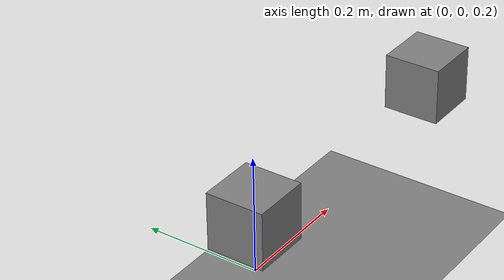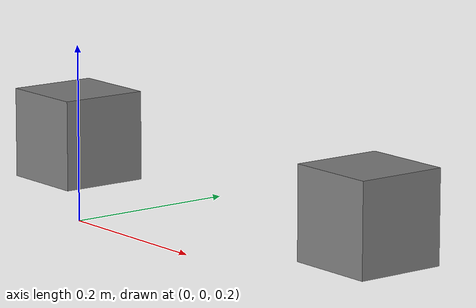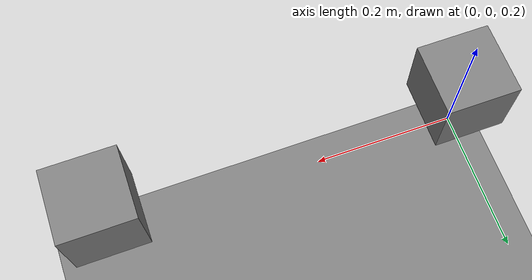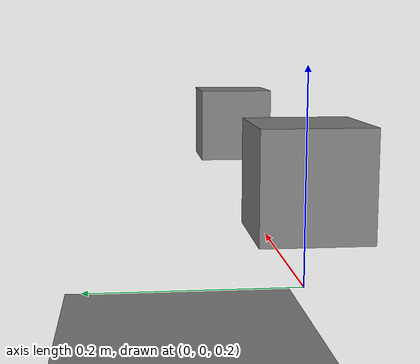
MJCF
<mujoco model="mesh_box">
  <compiler meshdir="meshes"/>
  <option timestep="0.001"/>
  <asset>
    <mesh name="box" file="box.stl"/>
  </asset>
  <worldbody>
    <camera name="cam" pos="0.25 -1 0.4" fovy="45"/>
    <geom name="floor" type="plane" size="1 1 0.05"/>
    <body name="mesh_box" pos="0 0 0.3">
      <freejoint name="mesh_free"/>
      <geom name="mesh_geom" type="mesh" mesh="box" density="1000"/>
    </body>
    <body name="prim_box" pos="0.5 0 0.3">
      <freejoint name="prim_free"/>
      <geom name="prim_geom" type="box" size="0.05 0.05 0.05" density="1000"/>
    </body>
  </worldbody>
</mujoco>
